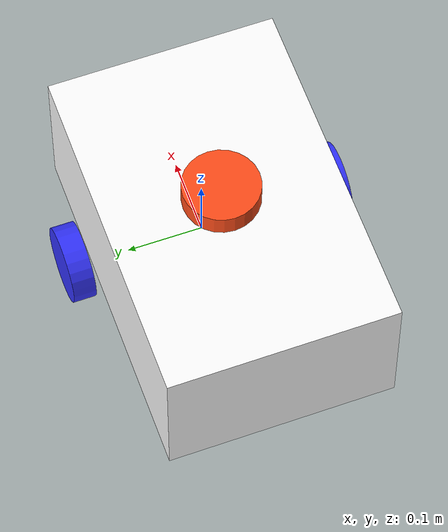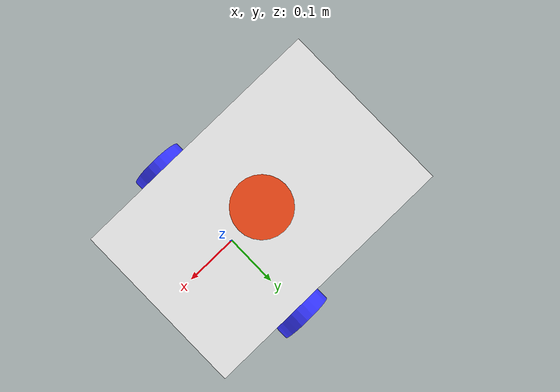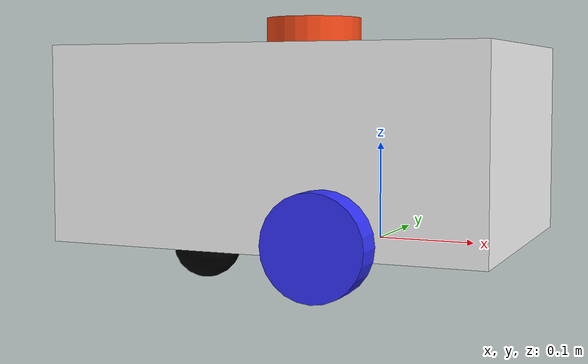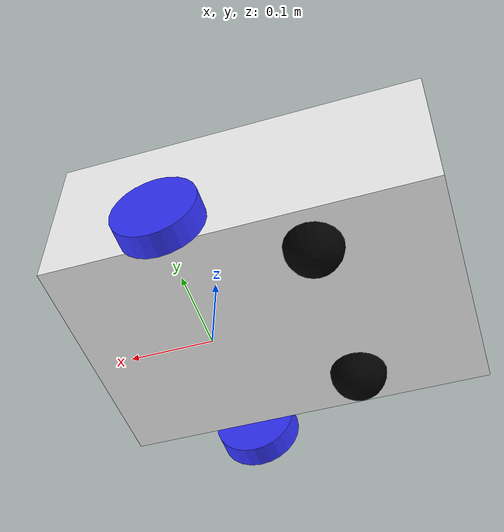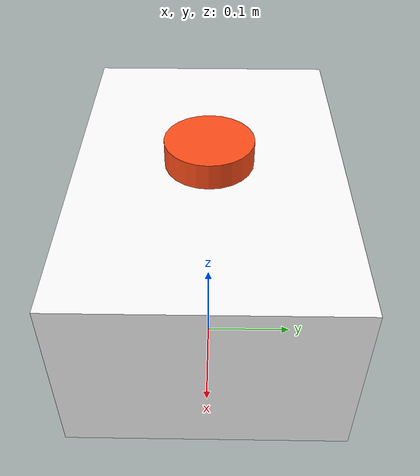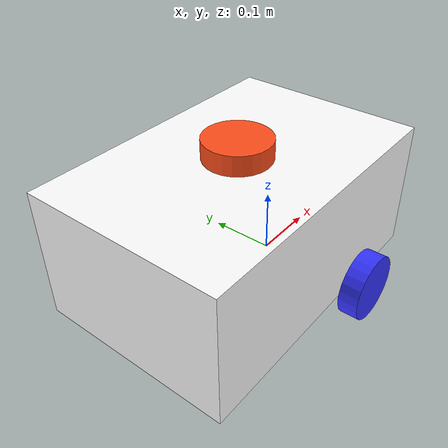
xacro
<?xml version="1.0"?>
<robot xmlns:xacro="http://www.ros.org/wiki/xacro"  name="robot">

    <xacro:include filename="robot_core.xacro"/>
    <xacro:include filename="ros2_control.xacro"/>
    <xacro:include filename="lidar.xacro"/>

</robot>

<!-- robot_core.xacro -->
<robot xmlns:xacro="http://www.ros.org/wiki/xacro" >

    <xacro:include filename="inertial_macros.xacro"/>

    <material name="white">
        <color rgba="1 1 1 1" />
    </material>

    <material name="orange">
        <color rgba="1 0.3 0.1 1"/>
    </material>

    <material name="blue">
        <color rgba="0.2 0.2 1 1"/>
    </material>

    <material name="black">
        <color rgba="0 0 0 1"/>
    </material>

    <!-- BASE LINK -->

    <link name="base_link">

    </link>

    <!-- CHASSIS LINK -->

    <joint name="chassis_joint" type="fixed">
        <parent link="base_link"/>
        <child link="chassis"/>
        <origin xyz="-0.30 0 0"/>
    </joint>

    <link name="chassis">
        <visual>
            <origin xyz="0.225 0 0.1"/>
            <geometry>
                <box size="0.45 0.30 0.2"/>
            </geometry>
            <material name="white"/>
        </visual>
        <collision>
            <origin xyz="0.225 0 0.1"/>
            <geometry>
                <box size="0.45 0.30 0.2"/>
            </geometry>
            <material name="white"/>
        </collision>
        <xacro:inertial_box mass="1.5" x="0.45" y="0.3" z="0.2">
            <origin xyz="0.225 0 0.1" rpy="0 0 0"/>
        </xacro:inertial_box>
    </link>

    <gazebo reference="chassis">
        <material>Gazebo/White</material>
    </gazebo>

    <!--LEFT WHEEL LINK -->

    <joint name="left_wheel_joint" type="continuous">
        <parent link="base_link"/>
        <child link="left_wheel"/>
        <origin xyz="0 0.175 0.016" rpy="-${pi/2} 0 0" />
        <axis xyz="0 0 1"/>
    </joint>

    <link name="left_wheel">
        <visual>
            <geometry>
                <cylinder radius="0.05" length="0.03"/>
            </geometry>
            <material name="blue"/>
        </visual>
        <collision>
            <geometry>
                <cylinder radius="0.05" length="0.03"/>
            </geometry>
            <material name="blue"/>
        </collision>
        <xacro:inertial_cylinder mass="0.1" length="0.03" radius="0.05">
            <origin xyz="0 0 0" rpy="0 0 0"/>
        </xacro:inertial_cylinder>
    </link>

    <gazebo reference="left_wheel">
        <material>Gazebo/Blue</material>
    </gazebo>

    <!-- RIGHT WHEEL LINK -->

    <joint name="right_wheel_joint" type="continuous">
        <parent link="base_link"/>
        <child link="right_wheel"/>
        <origin xyz="0 -0.175 0.016" rpy="${pi/2} 0 0" />
        <axis xyz="0 0 -1"/>
    </joint>

    <link name="right_wheel">
        <visual>
            <geometry>
                <cylinder radius="0.05" length="0.03"/>
            </geometry>
            <material name="blue"/>
        </visual>
        <collision>
            <geometry>
                <cylinder radius="0.05" length="0.03"/>
            </geometry>
            <material name="blue"/>
        </collision>
        <xacro:inertial_cylinder mass="0.1" length="0.03" radius="0.05">
            <origin xyz="0 0 0" rpy="0 0 0"/>
        </xacro:inertial_cylinder>
    </link>

    <gazebo reference="right_wheel">
        <material>Gazebo/Blue</material>
    </gazebo>

    <!-- LEFT CASTER WHEEL LINK -->

    <joint name="left_caster_wheel_joint" type="fixed">
        <parent link="chassis"/>
        <child link="left_caster_wheel"/>
        <origin xyz="0.15 0.1 0"/>
    </joint>

    <link name="left_caster_wheel">
        <visual>
            <geometry>
                <sphere radius="0.034"/>
            </geometry>
            <material name="black"/>
        </visual>
        <collision>
            <geometry>
                <sphere radius="0.034"/>
            </geometry>
            <material name="black"/>
        </collision>
        <xacro:inertial_sphere mass="0.05" radius="0.034">
            <origin xyz="0 0 0" rpy="0 0 0"/>
        </xacro:inertial_sphere>
    </link>

    <gazebo reference="left_caster_wheel">
        <material>Gazebo/Black</material>
        <mu1 value="0.001"/>
        <mu2 value="0.001"/>
    </gazebo>

<!-- RIGHT CASTER WHEEL LINK -->

    <joint name="right_caster_wheel_joint" type="fixed">
        <parent link="chassis"/>
        <child link="right_caster_wheel"/>
        <origin xyz="0.15 -0.1 0"/>
    </joint>

    <link name="right_caster_wheel">
        <visual>
            <geometry>
                <sphere radius="0.034"/>
            </geometry>
            <material name="black"/>
        </visual>
        <collision>
            <geometry>
                <sphere radius="0.034"/>
            </geometry>
            <material name="black"/>
        </collision>
        <xacro:inertial_sphere mass="0.05" radius="0.034">
            <origin xyz="0 0 0" rpy="0 0 0"/>
        </xacro:inertial_sphere>
    </link>

    <gazebo reference="right_caster_wheel">
        <material>Gazebo/Black</material>
        <mu1 value="0.001"/>
        <mu2 value="0.001"/>
    </gazebo>

</robot>

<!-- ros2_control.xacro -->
<ros2_control name="GazeboSystem" type="system">
  <hardware>
    <!-- hardware plugin для симуляции в Gazebo -->
    <plugin>gazebo_ros2_control/GazeboSystem</plugin>
  </hardware>

  <joint name="left_wheel_joint">
    <command_interface name="velocity">
      <param name="min">-10</param>
      <param name="max">10</param>
    </command_interface>
    <state_interface name="velocity"/>
    <state_interface name="position"/>
  </joint>

  <joint name="right_wheel_joint">
    <command_interface name="velocity">
      <param name="min">-10</param>
      <param name="max">10</param>
    </command_interface>
    <state_interface name="velocity"/>
    <state_interface name="position"/>
  </joint>
</ros2_control>

<gazebo>
  <plugin name="gazebo_ros2_control" filename="libgazebo_ros2_control.so">
    <robotNamespace>/</robotNamespace>
  </plugin>
</gazebo>

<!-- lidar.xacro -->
<robot xmlns:xacro="http://www.ros.org/wiki/xacro" >

    <joint name="laser_joint" type="fixed">
        <parent link="chassis"/>
        <child link="laser_frame"/>
        <origin xyz="0.225 0 0.215" rpy="0 0 0"/>
    </joint>

    <link name="laser_frame">
        <visual>
            <geometry>
                <cylinder radius="0.05" length="0.03"/>
            </geometry>
            <material name="orange"/>
        </visual>
        <collision>
            <geometry>
                <cylinder radius="0.05" length="0.03"/>
            </geometry>
            <material name="blue"/>
        </collision>
        <xacro:inertial_cylinder mass="0.1" length="0.03" radius="0.05">
            <origin xyz="0 0 0" rpy="0 0 0"/>
        </xacro:inertial_cylinder>
    </link>

    <gazebo reference="laser_frame">
        <material>Gazebo/Red</material>

        <sensor name="laser" type="ray">
            <pose> 0 0 0 0 0 0 </pose>
            <visualize>true</visualize>
            <update_rate>10</update_rate>
            <ray>
                <scan>
                    <horizontal>
                        <samples>360</samples>
                        <min_angle>-3.14</min_angle>
                        <max_angle>3.14</max_angle>
                    </horizontal>
                </scan>
                <range>
                    <min>0.3</min>
                    <max>12</max>
                </range>
            </ray>
            <plugin name="laser_controller" filename="libgazebo_ros_ray_sensor.so">
                <ros>
                    <argument>~/out:=scan</argument>
                </ros>
                <output_type>sensor_msgs/LaserScan</output_type>
                <frame_name>laser_frame</frame_name>
            </plugin>
        </sensor>
    </gazebo>

</robot>
